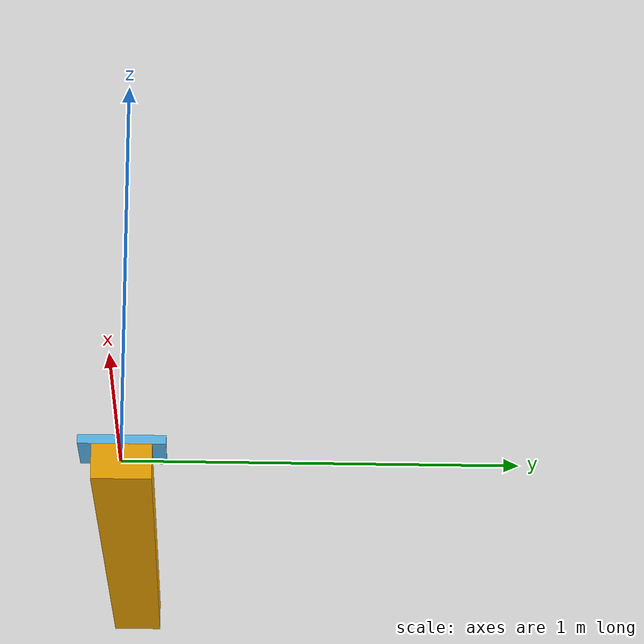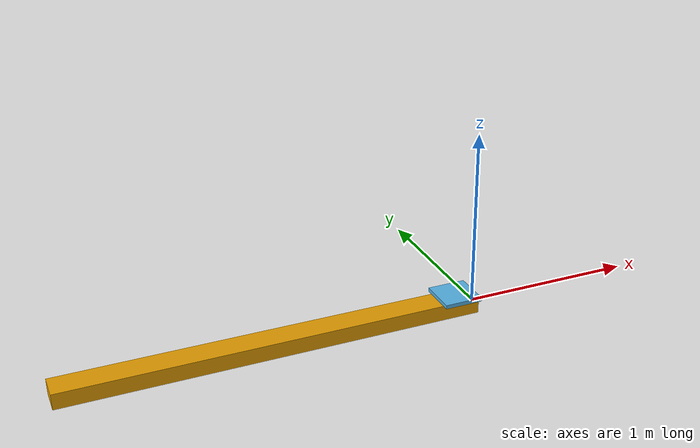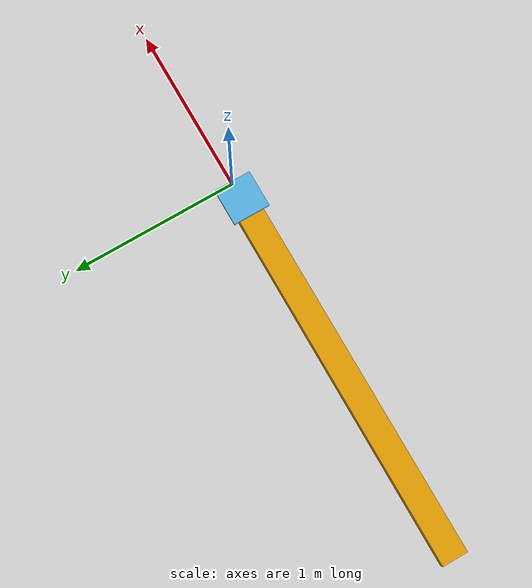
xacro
<?xml version="1.0"?>

<robot xmlns:xacro="http://ros.org/wiki/xacro" name="simple_rail">

  <link name="base_link">
    <visual>
      <origin xyz="-1.18125 0 0" rpy="0 0 0"/>
      <geometry>
        <box size="2.3625 0.153 0.09"/>
      </geometry>
    </visual>
  </link>

  <link name="carriage">
    <visual>
      <origin xyz="-0.1115 0 0.0565" rpy="0 0 0"/>
      <geometry>
        <box size="0.223 0.223 0.023"/>
      </geometry>
    </visual>
  </link>

  <joint name="base_to_carriage" type="prismatic">
    <origin xyz="-0.223 0 0" rpy="0 0 3.14159"/>
    <parent link="base_link"/>
    <child link="carriage"/>
    <limit effort="1000" velocity="0.197" lower="0" upper="2.1395"/>

  </joint>

</robot>
